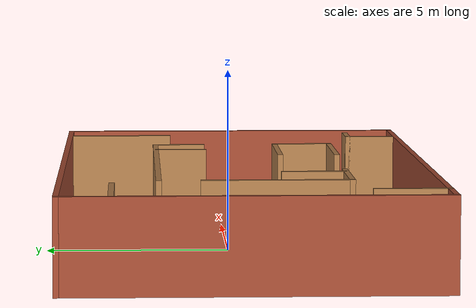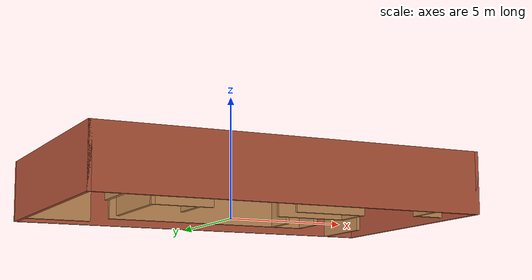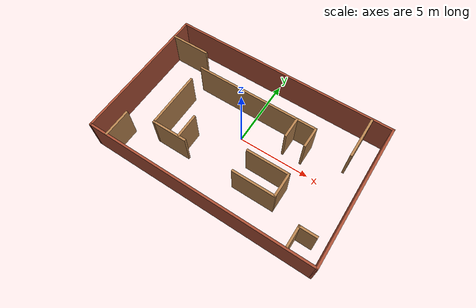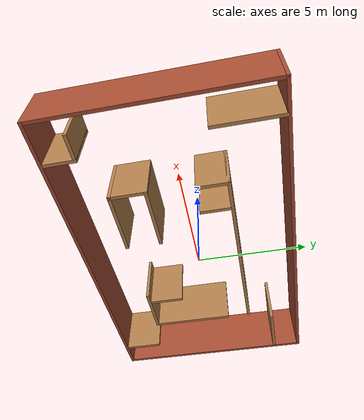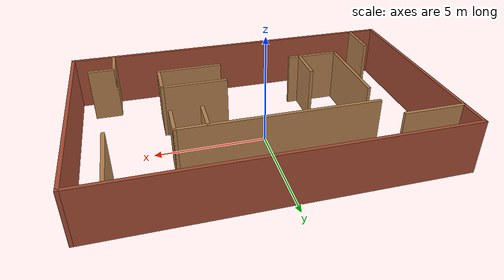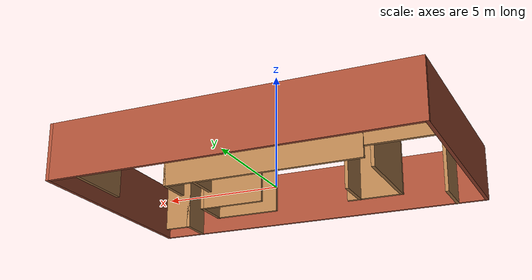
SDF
<?xml version='1.0'?>
<sdf version='1.6'>
  <model name='sim_world'>
    <pose frame=''>0.267794 -0.413952 0 0 -0 0</pose>
    <link name='Wall_10'>
      <collision name='Wall_10_Collision'>
        <geometry>
          <box>
            <size>8.75 0.15 2.5</size>
          </box>
        </geometry>
        <pose frame=''>0 0 1.25 0 -0 0</pose>
      </collision>
      <visual name='Wall_10_Visual'>
        <pose frame=''>0 0 1.25 0 -0 0</pose>
        <geometry>
          <box>
            <size>8.75 0.15 2.5</size>
          </box>
        </geometry>
        <material>
          <script>
            <uri>file://media/materials/scripts/gazebo.material</uri>
            <name>Gazebo/Wood</name>
          </script>
          <ambient>1 1 1 1</ambient>
        </material>
      </visual>
      <pose frame=''>-0.406828 2.37058 0 0 -0 0</pose>
    </link>
    <link name='Wall_11'>
      <collision name='Wall_11_Collision'>
        <geometry>
          <box>
            <size>1.5 0.15 2.5</size>
          </box>
        </geometry>
        <pose frame=''>0 0 1.25 0 -0 0</pose>
      </collision>
      <visual name='Wall_11_Visual'>
        <pose frame=''>0 0 1.25 0 -0 0</pose>
        <geometry>
          <box>
            <size>1.5 0.15 2.5</size>
          </box>
        </geometry>
        <material>
          <script>
            <uri>file://media/materials/scripts/gazebo.material</uri>
            <name>Gazebo/Wood</name>
          </script>
          <ambient>1 1 1 1</ambient>
        </material>
      </visual>
      <pose frame=''>3.89317 1.69558 0 0 0 -1.5708</pose>
    </link>
    <link name='Wall_13'>
      <collision name='Wall_13_Collision'>
        <geometry>
          <box>
            <size>1.75 0.15 2.5</size>
          </box>
        </geometry>
        <pose frame=''>0 0 1.25 0 -0 0</pose>
      </collision>
      <visual name='Wall_13_Visual'>
        <pose frame=''>0 0 1.25 0 -0 0</pose>
        <geometry>
          <box>
            <size>1.75 0.15 2.5</size>
          </box>
        </geometry>
        <material>
          <script>
            <uri>file://media/materials/scripts/gazebo.material</uri>
            <name>Gazebo/Wood</name>
          </script>
          <ambient>1 1 1 1</ambient>
        </material>
      </visual>
      <pose frame=''>4.02246 -1.92918 0 0 0 -1.5708</pose>
    </link>
    <link name='Wall_14'>
      <collision name='Wall_14_Collision'>
        <geometry>
          <box>
            <size>3 0.15 2.5</size>
          </box>
        </geometry>
        <pose frame=''>0 0 1.25 0 -0 0</pose>
      </collision>
      <visual name='Wall_14_Visual'>
        <pose frame=''>0 0 1.25 0 -0 0</pose>
        <geometry>
          <box>
            <size>3 0.15 2.5</size>
          </box>
        </geometry>
        <material>
          <script>
            <uri>file://media/materials/scripts/gazebo.material</uri>
            <name>Gazebo/Wood</name>
          </script>
          <ambient>1 1 1 1</ambient>
        </material>
      </visual>
      <pose frame=''>2.59746 -2.72919 0 0 -0 3.14159</pose>
    </link>
    <link name='Wall_16'>
      <collision name='Wall_16_Collision'>
        <geometry>
          <box>
            <size>2.5 0.15 2.5</size>
          </box>
        </geometry>
        <pose frame=''>0 0 1.25 0 -0 0</pose>
      </collision>
      <visual name='Wall_16_Visual'>
        <pose frame=''>0 0 1.25 0 -0 0</pose>
        <geometry>
          <box>
            <size>2.5 0.15 2.5</size>
          </box>
        </geometry>
        <material>
          <script>
            <uri>file://media/materials/scripts/gazebo.material</uri>
            <name>Gazebo/Wood</name>
          </script>
          <ambient>1 1 1 1</ambient>
        </material>
      </visual>
      <pose frame=''>-3.58888 -2.6377 0 0 -0 3.14159</pose>
    </link>
    <link name='Wall_17'>
      <collision name='Wall_17_Collision'>
        <geometry>
          <box>
            <size>4 0.15 2.5</size>
          </box>
        </geometry>
        <pose frame=''>0 0 1.25 0 -0 0</pose>
      </collision>
      <visual name='Wall_17_Visual'>
        <pose frame=''>0 0 1.25 0 -0 0</pose>
        <geometry>
          <box>
            <size>4 0.15 2.5</size>
          </box>
        </geometry>
        <material>
          <script>
            <uri>file://media/materials/scripts/gazebo.material</uri>
            <name>Gazebo/Wood</name>
          </script>
          <ambient>1 1 1 1</ambient>
        </material>
      </visual>
      <pose frame=''>-4.76388 -0.712703 0 0 -0 1.5708</pose>
    </link>
    <link name='Wall_19'>
      <collision name='Wall_19_Collision'>
        <geometry>
          <box>
            <size>1.75 0.15 2.5</size>
          </box>
        </geometry>
        <pose frame=''>0 0 1.25 0 -0 0</pose>
      </collision>
      <visual name='Wall_19_Visual'>
        <pose frame=''>0 0 1.25 0 -0 0</pose>
        <geometry>
          <box>
            <size>1.75 0.15 2.5</size>
          </box>
        </geometry>
        <material>
          <script>
            <uri>file://media/materials/scripts/gazebo.material</uri>
            <name>Gazebo/Wood</name>
          </script>
          <ambient>1 1 1 1</ambient>
        </material>
      </visual>
      <pose frame=''>-2.89661 -1.78839 0 0 0 -1.5708</pose>
    </link>
    <link name='Wall_21'>
      <collision name='Wall_21_Collision'>
        <geometry>
          <box>
            <size>2 0.15 2.5</size>
          </box>
        </geometry>
        <pose frame=''>0 0 1.25 0 -0 0</pose>
      </collision>
      <visual name='Wall_21_Visual'>
        <pose frame=''>0 0 1.25 0 -0 0</pose>
        <geometry>
          <box>
            <size>2 0.15 2.5</size>
          </box>
        </geometry>
        <material>
          <script>
            <uri>file://media/materials/scripts/gazebo.material</uri>
            <name>Gazebo/Wood</name>
          </script>
          <ambient>1 1 1 1</ambient>
        </material>
      </visual>
      <pose frame=''>-6.63773 -3.98509 0 0 0 -1.5708</pose>
    </link>
    <link name='Wall_23'>
      <collision name='Wall_23_Collision'>
        <geometry>
          <box>
            <size>2.75 0.15 2.5</size>
          </box>
        </geometry>
        <pose frame=''>0 0 1.25 0 -0 0</pose>
      </collision>
      <visual name='Wall_23_Visual'>
        <pose frame=''>0 0 1.25 0 -0 0</pose>
        <geometry>
          <box>
            <size>2.75 0.15 2.5</size>
          </box>
        </geometry>
        <material>
          <script>
            <uri>file://media/materials/scripts/gazebo.material</uri>
            <name>Gazebo/Wood</name>
          </script>
          <ambient>1 1 1 1</ambient>
        </material>
      </visual>
      <pose frame=''>-6.56466 3.57739 0 0 -0 0</pose>
    </link>
    <link name='Wall_25'>
      <collision name='Wall_25_Collision'>
        <geometry>
          <box>
            <size>1.5 0.15 2.5</size>
          </box>
        </geometry>
        <pose frame=''>0 0 1.25 0 -0 0</pose>
      </collision>
      <visual name='Wall_25_Visual'>
        <pose frame=''>0 0 1.25 0 -0 0</pose>
        <geometry>
          <box>
            <size>1.5 0.15 2.5</size>
          </box>
        </geometry>
        <material>
          <script>
            <uri>file://media/materials/scripts/gazebo.material</uri>
            <name>Gazebo/Wood</name>
          </script>
          <ambient>1 1 1 1</ambient>
        </material>
      </visual>
      <pose frame=''>2.57429 1.67546 0 0 0 -1.5708</pose>
    </link>
    <link name='Wall_27'>
      <collision name='Wall_27_Collision'>
        <geometry>
          <box>
            <size>3 0.15 2.5</size>
          </box>
        </geometry>
        <pose frame=''>0 0 1.25 0 -0 0</pose>
      </collision>
      <visual name='Wall_27_Visual'>
        <pose frame=''>0 0 1.25 0 -0 0</pose>
        <geometry>
          <box>
            <size>3 0.15 2.5</size>
          </box>
        </geometry>
        <material>
          <script>
            <uri>file://media/materials/scripts/gazebo.material</uri>
            <name>Gazebo/Wood</name>
          </script>
          <ambient>1 1 1 1</ambient>
        </material>
      </visual>
      <pose frame=''>6.51654 3.39943 0 0 0 -1.5708</pose>
    </link>
    <link name='Wall_29'>
      <collision name='Wall_29_Collision'>
        <geometry>
          <box>
            <size>1.5 0.15 2.5</size>
          </box>
        </geometry>
        <pose frame=''>0 0 1.25 0 -0 0</pose>
      </collision>
      <visual name='Wall_29_Visual'>
        <pose frame=''>0 0 1.25 0 -0 0</pose>
        <geometry>
          <box>
            <size>1.5 0.15 2.5</size>
          </box>
        </geometry>
        <material>
          <script>
            <uri>file://media/materials/scripts/gazebo.material</uri>
            <name>Gazebo/Wood</name>
          </script>
          <ambient>1 1 1 1</ambient>
        </material>
      </visual>
      <pose frame=''>6.03382 -4.15508 0 0 -0 1.5708</pose>
    </link>
    <link name='Wall_30'>
      <collision name='Wall_30_Collision'>
        <geometry>
          <box>
            <size>1.25 0.15 2.5</size>
          </box>
        </geometry>
        <pose frame=''>0 0 1.25 0 -0 0</pose>
      </collision>
      <visual name='Wall_30_Visual'>
        <pose frame=''>0 0 1.25 0 -0 0</pose>
        <geometry>
          <box>
            <size>1.25 0.15 2.5</size>
          </box>
        </geometry>
        <material>
          <script>
            <uri>file://media/materials/scripts/gazebo.material</uri>
            <name>Gazebo/Wood</name>
          </script>
          <ambient>1 1 1 1</ambient>
        </material>
      </visual>
      <pose frame=''>6.58382 -3.48008 0 0 -0 0</pose>
    </link>
    <link name='Wall_32'>
      <collision name='Wall_32_Collision'>
        <geometry>
          <box>
            <size>3 0.15 2.5</size>
          </box>
        </geometry>
        <pose frame=''>0 0 1.25 0 -0 0</pose>
      </collision>
      <visual name='Wall_32_Visual'>
        <pose frame=''>0 0 1.25 0 -0 0</pose>
        <geometry>
          <box>
            <size>3 0.15 2.5</size>
          </box>
        </geometry>
        <material>
          <script>
            <uri>file://media/materials/scripts/gazebo.material</uri>
            <name>Gazebo/Wood</name>
          </script>
          <ambient>1 1 1 1</ambient>
        </material>
      </visual>
      <pose frame=''>2.59746 -1.12919 0 0 -0 3.14159</pose>
    </link>
    <link name='Wall_4'>
      <collision name='Wall_4_Collision'>
        <geometry>
          <box>
            <size>10 0.15 2.5</size>
          </box>
        </geometry>
        <pose frame=''>0 0 1.25 0 -0 0</pose>
      </collision>
      <visual name='Wall_4_Visual'>
        <pose frame=''>0 0 1.25 0 -0 0</pose>
        <geometry>
          <box>
            <size>10 0.15 2.5</size>
          </box>
        </geometry>
        <material>
          <script>
            <uri>file://media/materials/scripts/gazebo.material</uri>
            <name>Gazebo/Bricks</name>
          </script>
          <ambient>1 1 1 1</ambient>
        </material>
      </visual>
      <pose frame=''>-7.925 0 0 0 0 -1.5708</pose>
    </link>
    <link name='Wall_5'>
      <collision name='Wall_5_Collision'>
        <geometry>
          <box>
            <size>16 0.15 2.5</size>
          </box>
        </geometry>
        <pose frame=''>0 0 1.25 0 -0 0</pose>
      </collision>
      <visual name='Wall_5_Visual'>
        <pose frame=''>0 0 1.25 0 -0 0</pose>
        <geometry>
          <box>
            <size>16 0.15 2.5</size>
          </box>
        </geometry>
        <material>
          <script>
            <uri>file://media/materials/scripts/gazebo.material</uri>
            <name>Gazebo/Bricks</name>
          </script>
          <ambient>1 1 1 1</ambient>
        </material>
      </visual>
      <pose frame=''>0 -4.925 0 0 -0 0</pose>
    </link>
    <link name='Wall_6'>
      <collision name='Wall_6_Collision'>
        <geometry>
          <box>
            <size>10 0.15 2.5</size>
          </box>
        </geometry>
        <pose frame=''>0 0 1.25 0 -0 0</pose>
      </collision>
      <visual name='Wall_6_Visual'>
        <pose frame=''>0 0 1.25 0 -0 0</pose>
        <geometry>
          <box>
            <size>10 0.15 2.5</size>
          </box>
        </geometry>
        <material>
          <script>
            <uri>file://media/materials/scripts/gazebo.material</uri>
            <name>Gazebo/Bricks</name>
          </script>
          <ambient>1 1 1 1</ambient>
        </material>
      </visual>
      <pose frame=''>7.925 0 0 0 -0 1.5708</pose>
    </link>
    <link name='Wall_7'>
      <collision name='Wall_7_Collision'>
        <geometry>
          <box>
            <size>16 0.15 2.5</size>
          </box>
        </geometry>
        <pose frame=''>0 0 1.25 0 -0 0</pose>
      </collision>
      <visual name='Wall_7_Visual'>
        <pose frame=''>0 0 1.25 0 -0 0</pose>
        <geometry>
          <box>
            <size>16 0.15 2.5</size>
          </box>
        </geometry>
        <material>
          <script>
            <uri>file://media/materials/scripts/gazebo.material</uri>
            <name>Gazebo/Bricks</name>
          </script>
          <ambient>1 1 1 1</ambient>
        </material>
      </visual>
      <pose frame=''>0 4.925 0 0 -0 3.14159</pose>
    </link>
    <static>1</static>
  </model>
</sdf>
